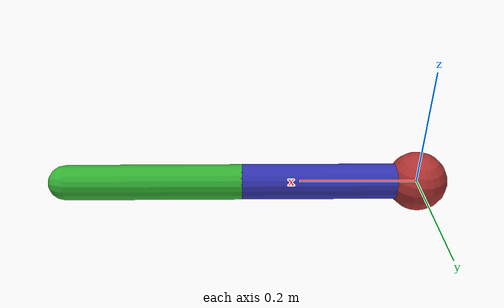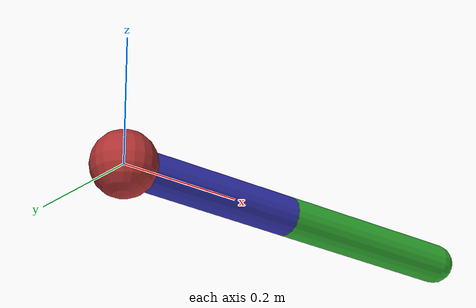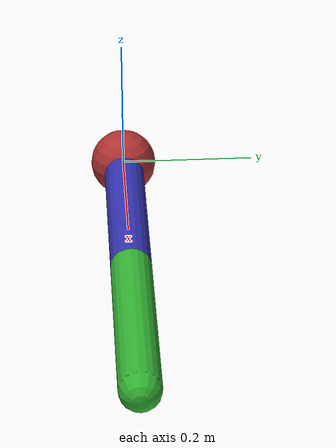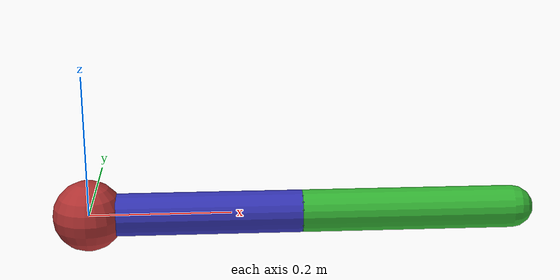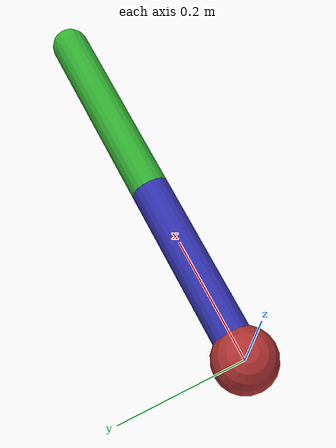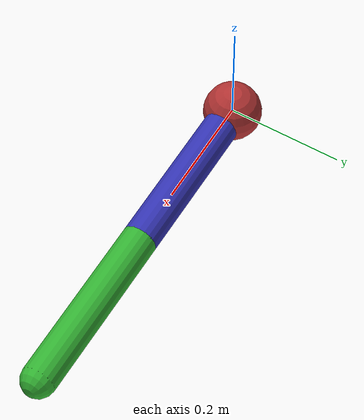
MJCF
<mujoco model="2R_robotic_arm">
    <compiler angle="radian" coordinate="local" autolimits="true"/>
    <option timestep="0.01" gravity="0 0 -9.81" />

    <worldbody>
        <!-- Base of the robotic arm -->
        <body name="base" pos="0 0 0">
            <geom type="sphere" size="0.05" rgba="0.7 0.2 0.2 1" />

            <!-- First link -->
            <body name="link1" pos="0 0 0">
                <joint name="joint1" type="hinge" axis="0 0 1" range="-180 180" />
                <geom type="capsule" fromto="0 0 0 0.3 0 0" size="0.03" rgba="0.2 0.2 0.7 1" />

                <!-- Second link -->
                <body name="link2" pos="0.3 0 0">
                    <joint name="joint2" type="hinge" axis="0 0 1" range="-180 180" />
                    <geom type="capsule" fromto="0 0 0 0.3 0 0" size="0.03" rgba="0.2 0.7 0.2 1" />
                </body>
            </body>
        </body>
    </worldbody>

    <actuator>
    <!-- comment out the actuator type based on script. e.g. if motor-based, comment out position -->

	<motor joint="joint1" ctrlrange="-50 50" />
	<motor joint="joint2" ctrlrange="-50 50" />
    </actuator>
</mujoco>
